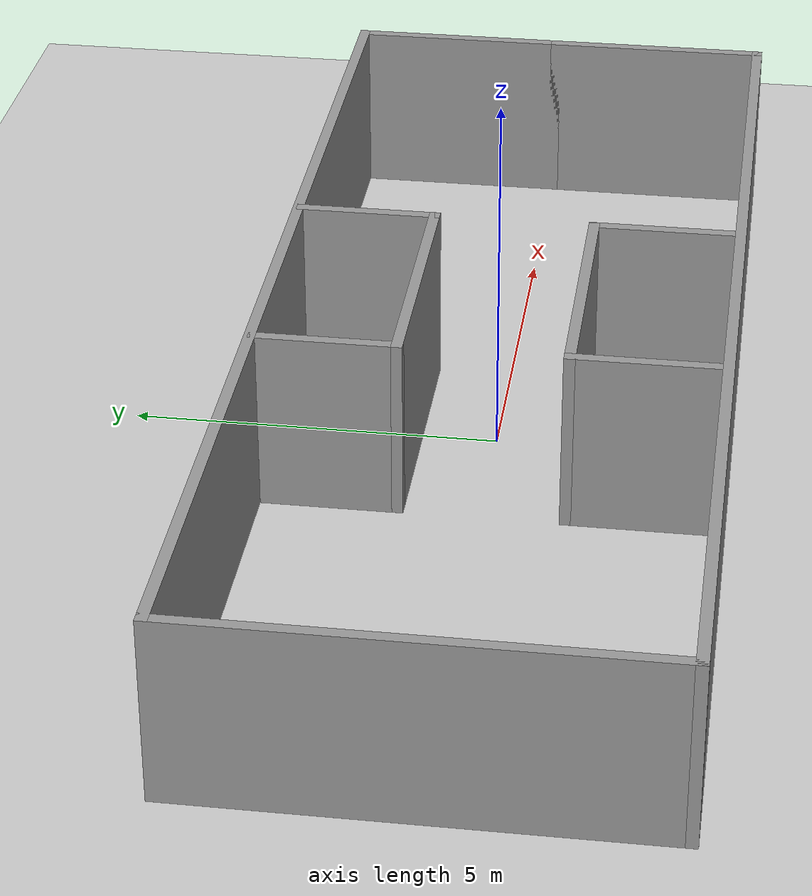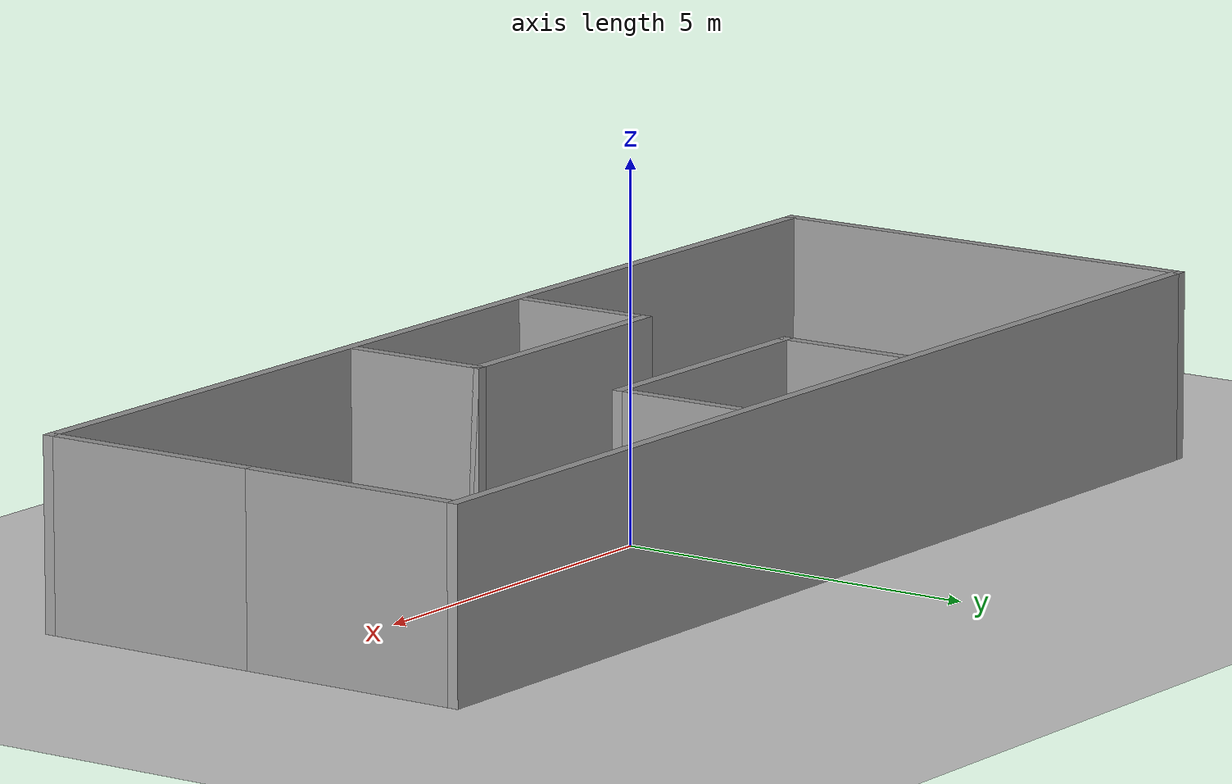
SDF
<sdf version="1.6">
 <world name="default">
  <light name="sun" type="directional">
   <pose>0 0 10 0 -0 0</pose>
   <diffuse>0.8 0.8 0.8 1</diffuse>
   <specular>0.1 0.1 0.1 1</specular>
   <attenuation>
    <range>1000</range>
    <constant>0.9</constant>
    <linear>0.01</linear>
    <quadratic>0.001</quadratic>
   </attenuation>
   <direction>-0.5 0.5 -1</direction>
  </light>
  <model name="ground_plane">
   <static>1</static>
   <link name="link">
    <collision name="collision">
     <geometry><plane><normal>0 0 1</normal><size>100 100</size></plane></geometry>
     <surface><friction><ode><mu>100</mu><mu2>50</mu2></ode></friction></surface>
    </collision>
    <visual name="visual">
     <cast_shadows>0</cast_shadows>
     <geometry><plane><normal>0 0 1</normal><size>100 100</size></plane></geometry>
     <material>
      <script><uri>file://media/materials/scripts/gazebo.material</uri><name>Gazebo/Grey</name></script>
     </material>
    </visual>
   </link>
  </model>
  <gravity>0 0 -9.8</gravity>
  <magnetic_field>6e-06 2.3e-05 -4.2e-05</magnetic_field>
  <atmosphere type="adiabatic"/>
  <physics name="default_physics" default="0" type="ode">
   <max_step_size>0.001</max_step_size>
   <real_time_factor>1</real_time_factor>
   <real_time_update_rate>1000</real_time_update_rate>
  </physics>
  <scene><ambient>0.4 0.4 0.4 1</ambient><background>0.7 0.7 0.7 1</background><shadows>1</shadows></scene>
  <spherical_coordinates>
   <surface_model>EARTH_WGS84</surface_model>
   <latitude_deg>0</latitude_deg>
   <longitude_deg>0</longitude_deg>
   <elevation>0</elevation>
   <heading_deg>0</heading_deg>
  </spherical_coordinates>
  <model name="oneway">
   <pose>-0.172712 -0.061014 0 0 -0 0</pose>
   <link name="Wall_10">
    <collision name="Wall_10_Collision">
     <geometry><box><size>3.25 0.15 2.5</size></box></geometry>
     <pose>0 0 1.25 0 -0 0</pose>
    </collision>
    <visual name="Wall_10_Visual">
     <pose>0 0 1.25 0 -0 0</pose>
     <geometry><box><size>3.25 0.15 2.5</size></box></geometry>
     <material>
      <script><uri>file://media/materials/scripts/gazebo.material</uri><name>Gazebo/Grey</name></script>
      <ambient>1 1 1 1</ambient>
     </material>
    </visual>
    <pose>7.925 -1.5 0 0 0 -1.5708</pose>
   </link>
   <link name="Wall_11">
    <collision name="Wall_11_Collision">
     <geometry><box><size>16 0.15 2.5</size></box></geometry>
     <pose>0 0 1.25 0 -0 0</pose>
    </collision>
    <visual name="Wall_11_Visual">
     <pose>0 0 1.25 0 -0 0</pose>
     <geometry><box><size>16 0.15 2.5</size></box></geometry>
     <material>
      <script><uri>file://media/materials/scripts/gazebo.material</uri><name>Gazebo/Grey</name></script>
      <ambient>1 1 1 1</ambient>
     </material>
    </visual>
    <pose>1e-06 -3.05 0 0 -0 3.14159</pose>
   </link>
   <link name="Wall_12">
    <collision name="Wall_12_Collision">
     <geometry><box><size>6.25 0.15 2.5</size></box></geometry>
     <pose>0 0 1.25 0 -0 0</pose>
    </collision>
    <visual name="Wall_12_Visual">
     <pose>0 0 1.25 0 -0 0</pose>
     <geometry><box><size>6.25 0.15 2.5</size></box></geometry>
     <material>
      <script><uri>file://media/materials/scripts/gazebo.material</uri><name>Gazebo/Grey</name></script>
      <ambient>1 1 1 1</ambient>
     </material>
    </visual>
    <pose>-7.925 0 0 0 -0 1.5708</pose>
   </link>
   <link name="Wall_13">
    <collision name="Wall_13_Collision">
     <geometry><box><size>16 0.15 2.5</size></box></geometry>
     <pose>0 0 1.25 0 -0 0</pose>
    </collision>
    <visual name="Wall_13_Visual">
     <pose>0 0 1.25 0 -0 0</pose>
     <geometry><box><size>16 0.15 2.5</size></box></geometry>
     <material>
      <script><uri>file://media/materials/scripts/gazebo.material</uri><name>Gazebo/Grey</name></script>
      <ambient>1 1 1 1</ambient>
     </material>
    </visual>
    <pose>1e-06 3.05 0 0 -0 0</pose>
   </link>
   <link name="Wall_17">
    <collision name="Wall_17_Collision">
     <geometry><box><size>3.75 0.15 2.5</size></box></geometry>
     <pose>0 0 1.25 0 -0 0</pose>
    </collision>
    <visual name="Wall_17_Visual">
     <pose>0 0 1.25 0 -0 0</pose>
     <geometry><box><size>3.75 0.15 2.5</size></box></geometry>
     <material>
      <script><uri>file://media/materials/scripts/gazebo.material</uri><name>Gazebo/Grey</name></script>
      <ambient>1 1 1 1</ambient>
     </material>
    </visual>
    <pose>0.125001 1.15 0 0 -0 3.14159</pose>
   </link>
   <link name="Wall_18">
    <collision name="Wall_18_Collision">
     <geometry><box><size>2 0.15 2.5</size></box></geometry>
     <pose>0 0 1.25 0 -0 0</pose>
    </collision>
    <visual name="Wall_18_Visual">
     <pose>0 0 1.25 0 -0 0</pose>
     <geometry><box><size>2 0.15 2.5</size></box></geometry>
     <material>
      <script><uri>file://media/materials/scripts/gazebo.material</uri><name>Gazebo/Grey</name></script>
      <ambient>1 1 1 1</ambient>
     </material>
    </visual>
    <pose>-1.675 2.075 0 0 -0 1.5708</pose>
   </link>
   <link name="Wall_20">
    <collision name="Wall_20_Collision">
     <geometry><box><size>2 0.15 2.5</size></box></geometry>
     <pose>0 0 1.25 0 -0 0</pose>
    </collision>
    <visual name="Wall_20_Visual">
     <pose>0 0 1.25 0 -0 0</pose>
     <geometry><box><size>2 0.15 2.5</size></box></geometry>
     <material>
      <script><uri>file://media/materials/scripts/gazebo.material</uri><name>Gazebo/Grey</name></script>
      <ambient>1 1 1 1</ambient>
     </material>
    </visual>
    <pose>1.925 2.075 0 0 -0 1.5708</pose>
   </link>
   <link name="Wall_23">
    <collision name="Wall_23_Collision">
     <geometry><box><size>3.75 0.15 2.5</size></box></geometry>
     <pose>0 0 1.25 0 -0 0</pose>
    </collision>
    <visual name="Wall_23_Visual">
     <pose>0 0 1.25 0 -0 0</pose>
     <geometry><box><size>3.75 0.15 2.5</size></box></geometry>
     <material>
      <script><uri>file://media/materials/scripts/gazebo.material</uri><name>Gazebo/Grey</name></script>
      <ambient>1 1 1 1</ambient>
     </material>
    </visual>
    <pose>0.125001 -1.05 0 0 -0 3.14159</pose>
   </link>
   <link name="Wall_24">
    <collision name="Wall_24_Collision">
     <geometry><box><size>2 0.15 2.5</size></box></geometry>
     <pose>0 0 1.25 0 -0 0</pose>
    </collision>
    <visual name="Wall_24_Visual">
     <pose>0 0 1.25 0 -0 0</pose>
     <geometry><box><size>2 0.15 2.5</size></box></geometry>
     <material>
      <script><uri>file://media/materials/scripts/gazebo.material</uri><name>Gazebo/Grey</name></script>
      <ambient>1 1 1 1</ambient>
     </material>
    </visual>
    <pose>-1.675 -1.975 0 0 0 -1.5708</pose>
   </link>
   <link name="Wall_26">
    <collision name="Wall_26_Collision">
     <geometry><box><size>2 0.15 2.5</size></box></geometry>
     <pose>0 0 1.25 0 -0 0</pose>
    </collision>
    <visual name="Wall_26_Visual">
     <pose>0 0 1.25 0 -0 0</pose>
     <geometry><box><size>2 0.15 2.5</size></box></geometry>
     <material>
      <script><uri>file://media/materials/scripts/gazebo.material</uri><name>Gazebo/Grey</name></script>
      <ambient>1 1 1 1</ambient>
     </material>
    </visual>
    <pose>1.925 -1.975 0 0 0 -1.5708</pose>
   </link>
   <link name="Wall_8">
    <collision name="Wall_8_Collision">
     <geometry><box><size>3 0.15 2.5</size></box></geometry>
     <pose>0 0 1.25 0 -0 0</pose>
    </collision>
    <visual name="Wall_8_Visual">
     <pose>0 0 1.25 0 -0 0</pose>
     <geometry><box><size>3 0.15 2.5</size></box></geometry>
     <material>
      <script><uri>file://media/materials/scripts/gazebo.material</uri><name>Gazebo/Grey</name></script>
      <ambient>1 1 1 1</ambient>
     </material>
    </visual>
    <pose>7.925 1.475 0 0 -0 1.5708</pose>
   </link>
   <static>1</static>
  </model>
 </world>
</sdf>
